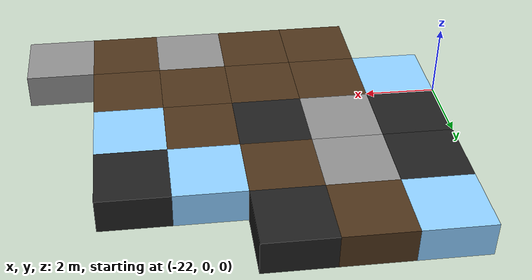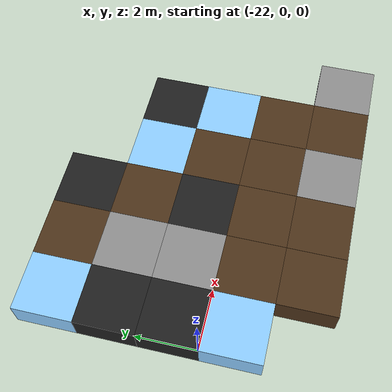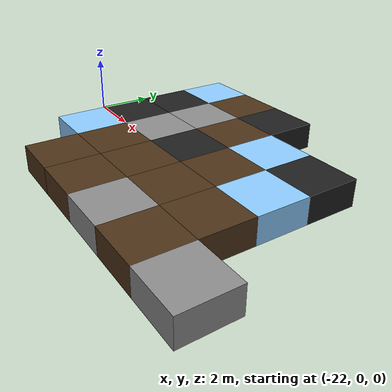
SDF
<sdf version="1.5">
 <world name="squares_example">
  <model name="tile_6_14">
   <static>true</static>
   <pose>-19.000 -3.000 -0.500 0 0 0</pose>
   <link name="link">
    <collision name="col">
     <geometry><box><size>2.0 2.0 1.0</size></box></geometry>
     <surface>
      <friction>
       <ode><mu>0.6</mu><mu2>0.4</mu2><fdir1>1 0 0</fdir1><slip1>0.08</slip1><slip2>0.08</slip2></ode>
       <torsional>
        <coefficient>0.03</coefficient>
        <use_patch_radius>false</use_patch_radius>
        <surface_radius>0.12</surface_radius>
        <ode><slip>0.0</slip></ode>
       </torsional>
      </friction>
      <bounce><restitution_coefficient>0.0</restitution_coefficient><threshold>0.1</threshold></bounce>
      <contact>
       <ode><kp>1000000.0</kp><kd>10000.0</kd><max_vel>0.01</max_vel><min_depth>0.0</min_depth></ode>
      </contact>
     </surface>
    </collision>
    <visual name="visual">
     <geometry><box><size>2.0 2.0 1.0</size></box></geometry>
     <material>
      <diffuse>0.30 0.20 0.10 1</diffuse>
      <ambient>0 0 0 0</ambient>
      <specular>0 0 0 1</specular>
      <emissive>0 0 0 1</emissive>
     </material>
    </visual>
   </link>
  </model>
  <model name="tile_7_14">
   <static>true</static>
   <pose>-17.000 -3.000 -0.500 0 0 0</pose>
   <link name="link">
    <collision name="col">
     <geometry><box><size>2.0 2.0 1.0</size></box></geometry>
     <surface>
      <friction>
       <ode><mu>0.6</mu><mu2>0.4</mu2><fdir1>1 0 0</fdir1><slip1>0.08</slip1><slip2>0.08</slip2></ode>
       <torsional>
        <coefficient>0.03</coefficient>
        <use_patch_radius>false</use_patch_radius>
        <surface_radius>0.12</surface_radius>
        <ode><slip>0.0</slip></ode>
       </torsional>
      </friction>
      <bounce><restitution_coefficient>0.0</restitution_coefficient><threshold>0.1</threshold></bounce>
      <contact>
       <ode><kp>1000000.0</kp><kd>10000.0</kd><max_vel>0.01</max_vel><min_depth>0.0</min_depth></ode>
      </contact>
     </surface>
    </collision>
    <visual name="visual">
     <geometry><box><size>2.0 2.0 1.0</size></box></geometry>
     <material>
      <diffuse>0.30 0.20 0.10 1</diffuse>
      <ambient>0 0 0 0</ambient>
      <specular>0 0 0 1</specular>
      <emissive>0 0 0 1</emissive>
     </material>
    </visual>
   </link>
  </model>
  <model name="tile_8_14">
   <static>true</static>
   <pose>-15.000 -3.000 -0.500 0 0 0</pose>
   <link name="link">
    <collision name="col">
     <geometry><box><size>2.0 2.0 1.0</size></box></geometry>
     <surface>
      <friction>
       <ode><mu>0.8</mu><mu2>0.3</mu2><fdir1>1 0 0</fdir1><slip1>0.0</slip1><slip2>0.0</slip2></ode>
       <torsional>
        <coefficient>0.03</coefficient>
        <use_patch_radius>false</use_patch_radius>
        <surface_radius>0.12</surface_radius>
        <ode><slip>0.0</slip></ode>
       </torsional>
      </friction>
      <bounce><restitution_coefficient>0.0</restitution_coefficient><threshold>0.1</threshold></bounce>
      <contact>
       <ode><kp>10000000000.0</kp><kd>10000000.0</kd><max_vel>0.01</max_vel><min_depth>0.0</min_depth></ode>
      </contact>
     </surface>
    </collision>
    <visual name="visual">
     <geometry><box><size>2.0 2.0 1.0</size></box></geometry>
     <material>
      <diffuse>0.55 0.55 0.55 1</diffuse>
      <ambient>0 0 0 0</ambient>
      <specular>0 0 0 1</specular>
      <emissive>0 0 0 1</emissive>
     </material>
    </visual>
   </link>
  </model>
  <model name="tile_9_14">
   <static>true</static>
   <pose>-13.000 -3.000 -0.500 0 0 0</pose>
   <link name="link">
    <collision name="col">
     <geometry><box><size>2.0 2.0 1.0</size></box></geometry>
     <surface>
      <friction>
       <ode><mu>0.6</mu><mu2>0.4</mu2><fdir1>1 0 0</fdir1><slip1>0.08</slip1><slip2>0.08</slip2></ode>
       <torsional>
        <coefficient>0.03</coefficient>
        <use_patch_radius>false</use_patch_radius>
        <surface_radius>0.12</surface_radius>
        <ode><slip>0.0</slip></ode>
       </torsional>
      </friction>
      <bounce><restitution_coefficient>0.0</restitution_coefficient><threshold>0.1</threshold></bounce>
      <contact>
       <ode><kp>1000000.0</kp><kd>10000.0</kd><max_vel>0.01</max_vel><min_depth>0.0</min_depth></ode>
      </contact>
     </surface>
    </collision>
    <visual name="visual">
     <geometry><box><size>2.0 2.0 1.0</size></box></geometry>
     <material>
      <diffuse>0.30 0.20 0.10 1</diffuse>
      <ambient>0 0 0 0</ambient>
      <specular>0 0 0 1</specular>
      <emissive>0 0 0 1</emissive>
     </material>
    </visual>
   </link>
  </model>
  <model name="tile_10_14">
   <static>true</static>
   <pose>-11.000 -3.000 -0.500 0 0 0</pose>
   <link name="link">
    <collision name="col">
     <geometry><box><size>2.0 2.0 1.0</size></box></geometry>
     <surface>
      <friction>
       <ode><mu>0.8</mu><mu2>0.3</mu2><fdir1>1 0 0</fdir1><slip1>0.0</slip1><slip2>0.0</slip2></ode>
       <torsional>
        <coefficient>0.03</coefficient>
        <use_patch_radius>false</use_patch_radius>
        <surface_radius>0.12</surface_radius>
        <ode><slip>0.0</slip></ode>
       </torsional>
      </friction>
      <bounce><restitution_coefficient>0.0</restitution_coefficient><threshold>0.1</threshold></bounce>
      <contact>
       <ode><kp>10000000000.0</kp><kd>10000000.0</kd><max_vel>0.01</max_vel><min_depth>0.0</min_depth></ode>
      </contact>
     </surface>
    </collision>
    <visual name="visual">
     <geometry><box><size>2.0 2.0 1.0</size></box></geometry>
     <material>
      <diffuse>0.55 0.55 0.55 1</diffuse>
      <ambient>0 0 0 0</ambient>
      <specular>0 0 0 1</specular>
      <emissive>0 0 0 1</emissive>
     </material>
    </visual>
   </link>
  </model>
  <model name="tile_5_15">
   <static>true</static>
   <pose>-21.000 -1.000 -0.500 0 0 0</pose>
   <link name="link">
    <collision name="col">
     <geometry><box><size>2.0 2.0 1.0</size></box></geometry>
     <surface>
      <friction>
       <ode><mu>0.03</mu><mu2>0.02</mu2><fdir1>1 0 0</fdir1><slip1>0.03</slip1><slip2>0.03</slip2></ode>
       <torsional>
        <coefficient>0.005</coefficient>
        <use_patch_radius>false</use_patch_radius>
        <surface_radius>0.12</surface_radius>
        <ode><slip>0.01</slip></ode>
       </torsional>
      </friction>
      <bounce><restitution_coefficient>0.0</restitution_coefficient><threshold>0.1</threshold></bounce>
      <contact>
       <ode><kp>10000000.0</kp><kd>1000.0</kd><max_vel>0.01</max_vel><min_depth>0.0</min_depth></ode>
      </contact>
     </surface>
    </collision>
    <visual name="visual">
     <geometry><box><size>2.0 2.0 1.0</size></box></geometry>
     <material>
      <diffuse>0.55 0.80 1.00 1</diffuse>
      <ambient>0 0 0 0</ambient>
      <specular>0 0 0 1</specular>
      <emissive>0 0 0 1</emissive>
     </material>
    </visual>
   </link>
  </model>
  <model name="tile_6_15">
   <static>true</static>
   <pose>-19.000 -1.000 -0.500 0 0 0</pose>
   <link name="link">
    <collision name="col">
     <geometry><box><size>2.0 2.0 1.0</size></box></geometry>
     <surface>
      <friction>
       <ode><mu>0.6</mu><mu2>0.4</mu2><fdir1>1 0 0</fdir1><slip1>0.08</slip1><slip2>0.08</slip2></ode>
       <torsional>
        <coefficient>0.03</coefficient>
        <use_patch_radius>false</use_patch_radius>
        <surface_radius>0.12</surface_radius>
        <ode><slip>0.0</slip></ode>
       </torsional>
      </friction>
      <bounce><restitution_coefficient>0.0</restitution_coefficient><threshold>0.1</threshold></bounce>
      <contact>
       <ode><kp>1000000.0</kp><kd>10000.0</kd><max_vel>0.01</max_vel><min_depth>0.0</min_depth></ode>
      </contact>
     </surface>
    </collision>
    <visual name="visual">
     <geometry><box><size>2.0 2.0 1.0</size></box></geometry>
     <material>
      <diffuse>0.30 0.20 0.10 1</diffuse>
      <ambient>0 0 0 0</ambient>
      <specular>0 0 0 1</specular>
      <emissive>0 0 0 1</emissive>
     </material>
    </visual>
   </link>
  </model>
  <model name="tile_7_15">
   <static>true</static>
   <pose>-17.000 -1.000 -0.500 0 0 0</pose>
   <link name="link">
    <collision name="col">
     <geometry><box><size>2.0 2.0 1.0</size></box></geometry>
     <surface>
      <friction>
       <ode><mu>0.6</mu><mu2>0.4</mu2><fdir1>1 0 0</fdir1><slip1>0.08</slip1><slip2>0.08</slip2></ode>
       <torsional>
        <coefficient>0.03</coefficient>
        <use_patch_radius>false</use_patch_radius>
        <surface_radius>0.12</surface_radius>
        <ode><slip>0.0</slip></ode>
       </torsional>
      </friction>
      <bounce><restitution_coefficient>0.0</restitution_coefficient><threshold>0.1</threshold></bounce>
      <contact>
       <ode><kp>1000000.0</kp><kd>10000.0</kd><max_vel>0.01</max_vel><min_depth>0.0</min_depth></ode>
      </contact>
     </surface>
    </collision>
    <visual name="visual">
     <geometry><box><size>2.0 2.0 1.0</size></box></geometry>
     <material>
      <diffuse>0.30 0.20 0.10 1</diffuse>
      <ambient>0 0 0 0</ambient>
      <specular>0 0 0 1</specular>
      <emissive>0 0 0 1</emissive>
     </material>
    </visual>
   </link>
  </model>
  <model name="tile_8_15">
   <static>true</static>
   <pose>-15.000 -1.000 -0.500 0 0 0</pose>
   <link name="link">
    <collision name="col">
     <geometry><box><size>2.0 2.0 1.0</size></box></geometry>
     <surface>
      <friction>
       <ode><mu>0.6</mu><mu2>0.4</mu2><fdir1>1 0 0</fdir1><slip1>0.08</slip1><slip2>0.08</slip2></ode>
       <torsional>
        <coefficient>0.03</coefficient>
        <use_patch_radius>false</use_patch_radius>
        <surface_radius>0.12</surface_radius>
        <ode><slip>0.0</slip></ode>
       </torsional>
      </friction>
      <bounce><restitution_coefficient>0.0</restitution_coefficient><threshold>0.1</threshold></bounce>
      <contact>
       <ode><kp>1000000.0</kp><kd>10000.0</kd><max_vel>0.01</max_vel><min_depth>0.0</min_depth></ode>
      </contact>
     </surface>
    </collision>
    <visual name="visual">
     <geometry><box><size>2.0 2.0 1.0</size></box></geometry>
     <material>
      <diffuse>0.30 0.20 0.10 1</diffuse>
      <ambient>0 0 0 0</ambient>
      <specular>0 0 0 1</specular>
      <emissive>0 0 0 1</emissive>
     </material>
    </visual>
   </link>
  </model>
  <model name="tile_9_15">
   <static>true</static>
   <pose>-13.000 -1.000 -0.500 0 0 0</pose>
   <link name="link">
    <collision name="col">
     <geometry><box><size>2.0 2.0 1.0</size></box></geometry>
     <surface>
      <friction>
       <ode><mu>0.6</mu><mu2>0.4</mu2><fdir1>1 0 0</fdir1><slip1>0.08</slip1><slip2>0.08</slip2></ode>
       <torsional>
        <coefficient>0.03</coefficient>
        <use_patch_radius>false</use_patch_radius>
        <surface_radius>0.12</surface_radius>
        <ode><slip>0.0</slip></ode>
       </torsional>
      </friction>
      <bounce><restitution_coefficient>0.0</restitution_coefficient><threshold>0.1</threshold></bounce>
      <contact>
       <ode><kp>1000000.0</kp><kd>10000.0</kd><max_vel>0.01</max_vel><min_depth>0.0</min_depth></ode>
      </contact>
     </surface>
    </collision>
    <visual name="visual">
     <geometry><box><size>2.0 2.0 1.0</size></box></geometry>
     <material>
      <diffuse>0.30 0.20 0.10 1</diffuse>
      <ambient>0 0 0 0</ambient>
      <specular>0 0 0 1</specular>
      <emissive>0 0 0 1</emissive>
     </material>
    </visual>
   </link>
  </model>
  <model name="tile_5_16">
   <static>true</static>
   <pose>-21.000 1.000 -0.500 0 0 0</pose>
   <link name="link">
    <collision name="col">
     <geometry><box><size>2.0 2.0 1.0</size></box></geometry>
     <surface>
      <friction>
       <ode><mu>0.4</mu><mu2>0.15</mu2><fdir1>1 0 0</fdir1><slip1>0.0</slip1><slip2>0.0</slip2></ode>
       <torsional>
        <coefficient>0.03</coefficient>
        <use_patch_radius>false</use_patch_radius>
        <surface_radius>0.12</surface_radius>
        <ode><slip>0.0</slip></ode>
       </torsional>
      </friction>
      <bounce><restitution_coefficient>0.0</restitution_coefficient><threshold>0.1</threshold></bounce>
      <contact>
       <ode><kp>1000000000.0</kp><kd>1000000.0</kd><max_vel>0.01</max_vel><min_depth>0.0</min_depth></ode>
      </contact>
     </surface>
    </collision>
    <visual name="visual">
     <geometry><box><size>2.0 2.0 1.0</size></box></geometry>
     <material>
      <diffuse>0.12 0.12 0.12 1</diffuse>
      <ambient>0 0 0 0</ambient>
      <specular>0 0 0 1</specular>
      <emissive>0 0 0 1</emissive>
     </material>
    </visual>
   </link>
  </model>
  <model name="tile_6_16">
   <static>true</static>
   <pose>-19.000 1.000 -0.500 0 0 0</pose>
   <link name="link">
    <collision name="col">
     <geometry><box><size>2.0 2.0 1.0</size></box></geometry>
     <surface>
      <friction>
       <ode><mu>0.8</mu><mu2>0.3</mu2><fdir1>1 0 0</fdir1><slip1>0.0</slip1><slip2>0.0</slip2></ode>
       <torsional>
        <coefficient>0.03</coefficient>
        <use_patch_radius>false</use_patch_radius>
        <surface_radius>0.12</surface_radius>
        <ode><slip>0.0</slip></ode>
       </torsional>
      </friction>
      <bounce><restitution_coefficient>0.0</restitution_coefficient><threshold>0.1</threshold></bounce>
      <contact>
       <ode><kp>10000000000.0</kp><kd>10000000.0</kd><max_vel>0.01</max_vel><min_depth>0.0</min_depth></ode>
      </contact>
     </surface>
    </collision>
    <visual name="visual">
     <geometry><box><size>2.0 2.0 1.0</size></box></geometry>
     <material>
      <diffuse>0.55 0.55 0.55 1</diffuse>
      <ambient>0 0 0 0</ambient>
      <specular>0 0 0 1</specular>
      <emissive>0 0 0 1</emissive>
     </material>
    </visual>
   </link>
  </model>
  <model name="tile_7_16">
   <static>true</static>
   <pose>-17.000 1.000 -0.500 0 0 0</pose>
   <link name="link">
    <collision name="col">
     <geometry><box><size>2.0 2.0 1.0</size></box></geometry>
     <surface>
      <friction>
       <ode><mu>0.4</mu><mu2>0.15</mu2><fdir1>1 0 0</fdir1><slip1>0.0</slip1><slip2>0.0</slip2></ode>
       <torsional>
        <coefficient>0.03</coefficient>
        <use_patch_radius>false</use_patch_radius>
        <surface_radius>0.12</surface_radius>
        <ode><slip>0.0</slip></ode>
       </torsional>
      </friction>
      <bounce><restitution_coefficient>0.0</restitution_coefficient><threshold>0.1</threshold></bounce>
      <contact>
       <ode><kp>1000000000.0</kp><kd>1000000.0</kd><max_vel>0.01</max_vel><min_depth>0.0</min_depth></ode>
      </contact>
     </surface>
    </collision>
    <visual name="visual">
     <geometry><box><size>2.0 2.0 1.0</size></box></geometry>
     <material>
      <diffuse>0.12 0.12 0.12 1</diffuse>
      <ambient>0 0 0 0</ambient>
      <specular>0 0 0 1</specular>
      <emissive>0 0 0 1</emissive>
     </material>
    </visual>
   </link>
  </model>
  <model name="tile_8_16">
   <static>true</static>
   <pose>-15.000 1.000 -0.500 0 0 0</pose>
   <link name="link">
    <collision name="col">
     <geometry><box><size>2.0 2.0 1.0</size></box></geometry>
     <surface>
      <friction>
       <ode><mu>0.6</mu><mu2>0.4</mu2><fdir1>1 0 0</fdir1><slip1>0.08</slip1><slip2>0.08</slip2></ode>
       <torsional>
        <coefficient>0.03</coefficient>
        <use_patch_radius>false</use_patch_radius>
        <surface_radius>0.12</surface_radius>
        <ode><slip>0.0</slip></ode>
       </torsional>
      </friction>
      <bounce><restitution_coefficient>0.0</restitution_coefficient><threshold>0.1</threshold></bounce>
      <contact>
       <ode><kp>1000000.0</kp><kd>10000.0</kd><max_vel>0.01</max_vel><min_depth>0.0</min_depth></ode>
      </contact>
     </surface>
    </collision>
    <visual name="visual">
     <geometry><box><size>2.0 2.0 1.0</size></box></geometry>
     <material>
      <diffuse>0.30 0.20 0.10 1</diffuse>
      <ambient>0 0 0 0</ambient>
      <specular>0 0 0 1</specular>
      <emissive>0 0 0 1</emissive>
     </material>
    </visual>
   </link>
  </model>
  <model name="tile_9_16">
   <static>true</static>
   <pose>-13.000 1.000 -0.500 0 0 0</pose>
   <link name="link">
    <collision name="col">
     <geometry><box><size>2.0 2.0 1.0</size></box></geometry>
     <surface>
      <friction>
       <ode><mu>0.03</mu><mu2>0.02</mu2><fdir1>1 0 0</fdir1><slip1>0.03</slip1><slip2>0.03</slip2></ode>
       <torsional>
        <coefficient>0.005</coefficient>
        <use_patch_radius>false</use_patch_radius>
        <surface_radius>0.12</surface_radius>
        <ode><slip>0.01</slip></ode>
       </torsional>
      </friction>
      <bounce><restitution_coefficient>0.0</restitution_coefficient><threshold>0.1</threshold></bounce>
      <contact>
       <ode><kp>10000000.0</kp><kd>1000.0</kd><max_vel>0.01</max_vel><min_depth>0.0</min_depth></ode>
      </contact>
     </surface>
    </collision>
    <visual name="visual">
     <geometry><box><size>2.0 2.0 1.0</size></box></geometry>
     <material>
      <diffuse>0.55 0.80 1.00 1</diffuse>
      <ambient>0 0 0 0</ambient>
      <specular>0 0 0 1</specular>
      <emissive>0 0 0 1</emissive>
     </material>
    </visual>
   </link>
  </model>
  <model name="tile_5_17">
   <static>true</static>
   <pose>-21.000 3.000 -0.500 0 0 0</pose>
   <link name="link">
    <collision name="col">
     <geometry><box><size>2.0 2.0 1.0</size></box></geometry>
     <surface>
      <friction>
       <ode><mu>0.4</mu><mu2>0.15</mu2><fdir1>1 0 0</fdir1><slip1>0.0</slip1><slip2>0.0</slip2></ode>
       <torsional>
        <coefficient>0.03</coefficient>
        <use_patch_radius>false</use_patch_radius>
        <surface_radius>0.12</surface_radius>
        <ode><slip>0.0</slip></ode>
       </torsional>
      </friction>
      <bounce><restitution_coefficient>0.0</restitution_coefficient><threshold>0.1</threshold></bounce>
      <contact>
       <ode><kp>1000000000.0</kp><kd>1000000.0</kd><max_vel>0.01</max_vel><min_depth>0.0</min_depth></ode>
      </contact>
     </surface>
    </collision>
    <visual name="visual">
     <geometry><box><size>2.0 2.0 1.0</size></box></geometry>
     <material>
      <diffuse>0.12 0.12 0.12 1</diffuse>
      <ambient>0 0 0 0</ambient>
      <specular>0 0 0 1</specular>
      <emissive>0 0 0 1</emissive>
     </material>
    </visual>
   </link>
  </model>
  <model name="tile_6_17">
   <static>true</static>
   <pose>-19.000 3.000 -0.500 0 0 0</pose>
   <link name="link">
    <collision name="col">
     <geometry><box><size>2.0 2.0 1.0</size></box></geometry>
     <surface>
      <friction>
       <ode><mu>0.8</mu><mu2>0.3</mu2><fdir1>1 0 0</fdir1><slip1>0.0</slip1><slip2>0.0</slip2></ode>
       <torsional>
        <coefficient>0.03</coefficient>
        <use_patch_radius>false</use_patch_radius>
        <surface_radius>0.12</surface_radius>
        <ode><slip>0.0</slip></ode>
       </torsional>
      </friction>
      <bounce><restitution_coefficient>0.0</restitution_coefficient><threshold>0.1</threshold></bounce>
      <contact>
       <ode><kp>10000000000.0</kp><kd>10000000.0</kd><max_vel>0.01</max_vel><min_depth>0.0</min_depth></ode>
      </contact>
     </surface>
    </collision>
    <visual name="visual">
     <geometry><box><size>2.0 2.0 1.0</size></box></geometry>
     <material>
      <diffuse>0.55 0.55 0.55 1</diffuse>
      <ambient>0 0 0 0</ambient>
      <specular>0 0 0 1</specular>
      <emissive>0 0 0 1</emissive>
     </material>
    </visual>
   </link>
  </model>
  <model name="tile_7_17">
   <static>true</static>
   <pose>-17.000 3.000 -0.500 0 0 0</pose>
   <link name="link">
    <collision name="col">
     <geometry><box><size>2.0 2.0 1.0</size></box></geometry>
     <surface>
      <friction>
       <ode><mu>0.6</mu><mu2>0.4</mu2><fdir1>1 0 0</fdir1><slip1>0.08</slip1><slip2>0.08</slip2></ode>
       <torsional>
        <coefficient>0.03</coefficient>
        <use_patch_radius>false</use_patch_radius>
        <surface_radius>0.12</surface_radius>
        <ode><slip>0.0</slip></ode>
       </torsional>
      </friction>
      <bounce><restitution_coefficient>0.0</restitution_coefficient><threshold>0.1</threshold></bounce>
      <contact>
       <ode><kp>1000000.0</kp><kd>10000.0</kd><max_vel>0.01</max_vel><min_depth>0.0</min_depth></ode>
      </contact>
     </surface>
    </collision>
    <visual name="visual">
     <geometry><box><size>2.0 2.0 1.0</size></box></geometry>
     <material>
      <diffuse>0.30 0.20 0.10 1</diffuse>
      <ambient>0 0 0 0</ambient>
      <specular>0 0 0 1</specular>
      <emissive>0 0 0 1</emissive>
     </material>
    </visual>
   </link>
  </model>
  <model name="tile_8_17">
   <static>true</static>
   <pose>-15.000 3.000 -0.500 0 0 0</pose>
   <link name="link">
    <collision name="col">
     <geometry><box><size>2.0 2.0 1.0</size></box></geometry>
     <surface>
      <friction>
       <ode><mu>0.03</mu><mu2>0.02</mu2><fdir1>1 0 0</fdir1><slip1>0.03</slip1><slip2>0.03</slip2></ode>
       <torsional>
        <coefficient>0.005</coefficient>
        <use_patch_radius>false</use_patch_radius>
        <surface_radius>0.12</surface_radius>
        <ode><slip>0.01</slip></ode>
       </torsional>
      </friction>
      <bounce><restitution_coefficient>0.0</restitution_coefficient><threshold>0.1</threshold></bounce>
      <contact>
       <ode><kp>10000000.0</kp><kd>1000.0</kd><max_vel>0.01</max_vel><min_depth>0.0</min_depth></ode>
      </contact>
     </surface>
    </collision>
    <visual name="visual">
     <geometry><box><size>2.0 2.0 1.0</size></box></geometry>
     <material>
      <diffuse>0.55 0.80 1.00 1</diffuse>
      <ambient>0 0 0 0</ambient>
      <specular>0 0 0 1</specular>
      <emissive>0 0 0 1</emissive>
     </material>
    </visual>
   </link>
  </model>
  <model name="tile_9_17">
   <static>true</static>
   <pose>-13.000 3.000 -0.500 0 0 0</pose>
   <link name="link">
    <collision name="col">
     <geometry><box><size>2.0 2.0 1.0</size></box></geometry>
     <surface>
      <friction>
       <ode><mu>0.4</mu><mu2>0.15</mu2><fdir1>1 0 0</fdir1><slip1>0.0</slip1><slip2>0.0</slip2></ode>
       <torsional>
        <coefficient>0.03</coefficient>
        <use_patch_radius>false</use_patch_radius>
        <surface_radius>0.12</surface_radius>
        <ode><slip>0.0</slip></ode>
       </torsional>
      </friction>
      <bounce><restitution_coefficient>0.0</restitution_coefficient><threshold>0.1</threshold></bounce>
      <contact>
       <ode><kp>1000000000.0</kp><kd>1000000.0</kd><max_vel>0.01</max_vel><min_depth>0.0</min_depth></ode>
      </contact>
     </surface>
    </collision>
    <visual name="visual">
     <geometry><box><size>2.0 2.0 1.0</size></box></geometry>
     <material>
      <diffuse>0.12 0.12 0.12 1</diffuse>
      <ambient>0 0 0 0</ambient>
      <specular>0 0 0 1</specular>
      <emissive>0 0 0 1</emissive>
     </material>
    </visual>
   </link>
  </model>
  <model name="tile_5_18">
   <static>true</static>
   <pose>-21.000 5.000 -0.500 0 0 0</pose>
   <link name="link">
    <collision name="col">
     <geometry><box><size>2.0 2.0 1.0</size></box></geometry>
     <surface>
      <friction>
       <ode><mu>0.03</mu><mu2>0.02</mu2><fdir1>1 0 0</fdir1><slip1>0.03</slip1><slip2>0.03</slip2></ode>
       <torsional>
        <coefficient>0.005</coefficient>
        <use_patch_radius>false</use_patch_radius>
        <surface_radius>0.12</surface_radius>
        <ode><slip>0.01</slip></ode>
       </torsional>
      </friction>
      <bounce><restitution_coefficient>0.0</restitution_coefficient><threshold>0.1</threshold></bounce>
      <contact>
       <ode><kp>10000000.0</kp><kd>1000.0</kd><max_vel>0.01</max_vel><min_depth>0.0</min_depth></ode>
      </contact>
     </surface>
    </collision>
    <visual name="visual">
     <geometry><box><size>2.0 2.0 1.0</size></box></geometry>
     <material>
      <diffuse>0.55 0.80 1.00 1</diffuse>
      <ambient>0 0 0 0</ambient>
      <specular>0 0 0 1</specular>
      <emissive>0 0 0 1</emissive>
     </material>
    </visual>
   </link>
  </model>
  <model name="tile_6_18">
   <static>true</static>
   <pose>-19.000 5.000 -0.500 0 0 0</pose>
   <link name="link">
    <collision name="col">
     <geometry><box><size>2.0 2.0 1.0</size></box></geometry>
     <surface>
      <friction>
       <ode><mu>0.6</mu><mu2>0.4</mu2><fdir1>1 0 0</fdir1><slip1>0.08</slip1><slip2>0.08</slip2></ode>
       <torsional>
        <coefficient>0.03</coefficient>
        <use_patch_radius>false</use_patch_radius>
        <surface_radius>0.12</surface_radius>
        <ode><slip>0.0</slip></ode>
       </torsional>
      </friction>
      <bounce><restitution_coefficient>0.0</restitution_coefficient><threshold>0.1</threshold></bounce>
      <contact>
       <ode><kp>1000000.0</kp><kd>10000.0</kd><max_vel>0.01</max_vel><min_depth>0.0</min_depth></ode>
      </contact>
     </surface>
    </collision>
    <visual name="visual">
     <geometry><box><size>2.0 2.0 1.0</size></box></geometry>
     <material>
      <diffuse>0.30 0.20 0.10 1</diffuse>
      <ambient>0 0 0 0</ambient>
      <specular>0 0 0 1</specular>
      <emissive>0 0 0 1</emissive>
     </material>
    </visual>
   </link>
  </model>
  <model name="tile_7_18">
   <static>true</static>
   <pose>-17.000 5.000 -0.500 0 0 0</pose>
   <link name="link">
    <collision name="col">
     <geometry><box><size>2.0 2.0 1.0</size></box></geometry>
     <surface>
      <friction>
       <ode><mu>0.4</mu><mu2>0.15</mu2><fdir1>1 0 0</fdir1><slip1>0.0</slip1><slip2>0.0</slip2></ode>
       <torsional>
        <coefficient>0.03</coefficient>
        <use_patch_radius>false</use_patch_radius>
        <surface_radius>0.12</surface_radius>
        <ode><slip>0.0</slip></ode>
       </torsional>
      </friction>
      <bounce><restitution_coefficient>0.0</restitution_coefficient><threshold>0.1</threshold></bounce>
      <contact>
       <ode><kp>1000000000.0</kp><kd>1000000.0</kd><max_vel>0.01</max_vel><min_depth>0.0</min_depth></ode>
      </contact>
     </surface>
    </collision>
    <visual name="visual">
     <geometry><box><size>2.0 2.0 1.0</size></box></geometry>
     <material>
      <diffuse>0.12 0.12 0.12 1</diffuse>
      <ambient>0 0 0 0</ambient>
      <specular>0 0 0 1</specular>
      <emissive>0 0 0 1</emissive>
     </material>
    </visual>
   </link>
  </model>
 </world>
</sdf>
